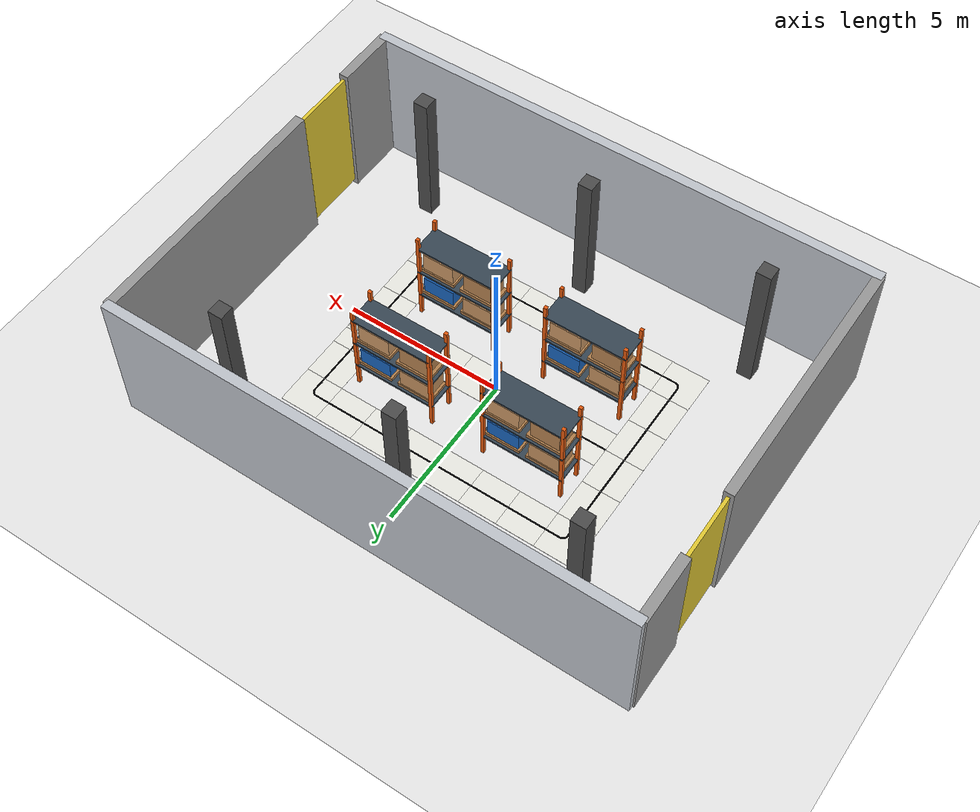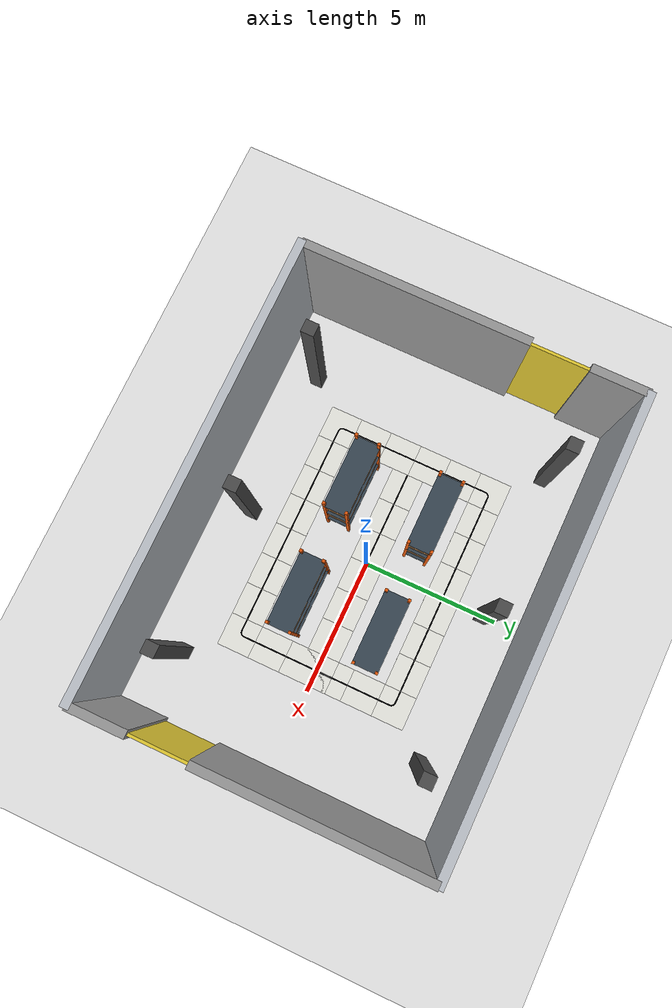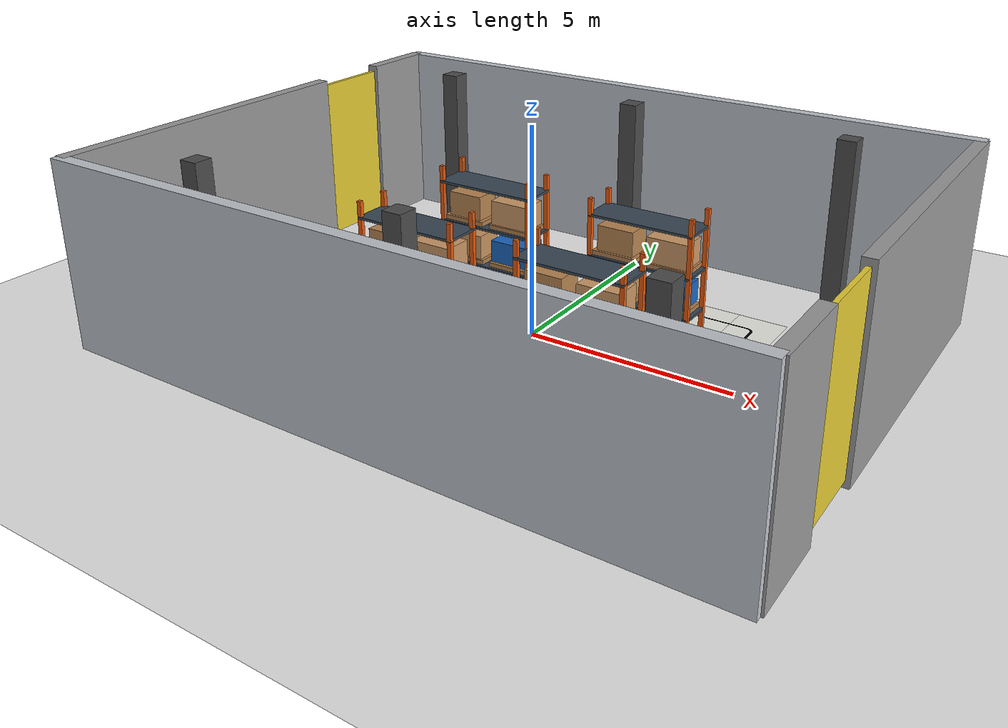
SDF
<sdf version='1.7'>
  <world name='default'>
    <!-- Iluminacao Industrial Zenital Suave (Sem Sombras Duras para Visao Computacional) -->
    <light name='sun_industrial' type='directional'>
      <cast_shadows>0</cast_shadows>
      <pose>0 0 25 0 0 0</pose>
      <diffuse>0.95 0.95 0.95 1</diffuse>
      <specular>0.08 0.08 0.08 1</specular>
      <attenuation>
        <range>1000</range>
        <constant>0.9</constant>
        <linear>0.01</linear>
        <quadratic>0.001</quadratic>
      </attenuation>
      <direction>0.05 0.05 -1</direction>
    </light>

    <!-- Luminarias Industriais Distribuidas (Luzes High-Bay) -->
    <light name='bay_light_1' type='point'>
      <cast_shadows>0</cast_shadows>
      <pose>-3.5 2.5 4.5 0 0 0</pose>
      <diffuse>0.88 0.90 0.95 1</diffuse>
      <specular>0.1 0.1 0.1 1</specular>
      <attenuation><range>25</range><constant>0.8</constant><linear>0.02</linear><quadratic>0.005</quadratic></attenuation>
    </light>

    <light name='bay_light_2' type='point'>
      <cast_shadows>0</cast_shadows>
      <pose>3.5 2.5 4.5 0 0 0</pose>
      <diffuse>0.88 0.90 0.95 1</diffuse>
      <specular>0.1 0.1 0.1 1</specular>
      <attenuation><range>25</range><constant>0.8</constant><linear>0.02</linear><quadratic>0.005</quadratic></attenuation>
    </light>

    <light name='bay_light_3' type='point'>
      <cast_shadows>0</cast_shadows>
      <pose>-3.5 -2.5 4.5 0 0 0</pose>
      <diffuse>0.88 0.90 0.95 1</diffuse>
      <specular>0.1 0.1 0.1 1</specular>
      <attenuation><range>25</range><constant>0.8</constant><linear>0.02</linear><quadratic>0.005</quadratic></attenuation>
    </light>

    <light name='bay_light_4' type='point'>
      <cast_shadows>0</cast_shadows>
      <pose>3.5 -2.5 4.5 0 0 0</pose>
      <diffuse>0.88 0.90 0.95 1</diffuse>
      <specular>0.1 0.1 0.1 1</specular>
      <attenuation><range>25</range><constant>0.8</constant><linear>0.02</linear><quadratic>0.005</quadratic></attenuation>
    </light>

    <light name='bay_light_center' type='point'>
      <cast_shadows>0</cast_shadows>
      <pose>0.0 0.0 5.0 0 0 0</pose>
      <diffuse>0.92 0.92 0.95 1</diffuse>
      <specular>0.1 0.1 0.1 1</specular>
      <attenuation><range>30</range><constant>0.8</constant><linear>0.015</linear><quadratic>0.003</quadratic></attenuation>
    </light>

    <!-- Ambiente Global do Armazem -->
    <scene>
      <ambient>0.92 0.92 0.94 1</ambient>
      <background>0.95 0.95 0.98 1</background>
      <shadows>0</shadows>
      <grid>0</grid>
    </scene>

    <!-- Piso Industrial de Concreto Polido Claro (Alto Atrito e Contraste com Linhas Pretas) -->
    <model name='ground_plane'>
      <static>1</static>
      <link name='link'>
        <collision name='collision'>
          <geometry>
            <plane>
              <normal>0 0 1</normal>
              <size>150 150</size>
            </plane>
          </geometry>
          <surface>
            <contact><collide_bitmask>65535</collide_bitmask><ode/></contact>
            <friction>
              <ode><mu>100</mu><mu2>50</mu2></ode>
              <torsional><ode/></torsional>
            </friction>
            <bounce/>
          </surface>
        </collision>
        <visual name='visual'>
          <cast_shadows>0</cast_shadows>
          <geometry>
            <plane>
              <normal>0 0 1</normal>
              <size>150 150</size>
            </plane>
          </geometry>
          <material>
            <script>
              <uri>file://media/materials/scripts/gazebo.material</uri>
              <name>Gazebo/White</name>
            </script>
            <ambient>0.98 0.98 0.98 1</ambient>
            <diffuse>0.98 0.98 0.98 1</diffuse>
            <specular>0.05 0.05 0.05 1</specular>
          </material>
        </visual>
      </link>
    </model>

    <!-- Parametros Fisicos ODE para Estabilidade Dinamica -->
    <gravity>0 0 -9.8</gravity>
    <magnetic_field>6e-06 2.3e-05 -4.2e-05</magnetic_field>
    <atmosphere type='adiabatic'/>
    <physics type='ode'>
      <max_step_size>0.001</max_step_size>
      <real_time_factor>1</real_time_factor>
      <real_time_update_rate>1000</real_time_update_rate>
    </physics>
    <audio><device>none</device></audio>

    <!-- Parede Perimetral Norte -->
    <model name='parede_norte'>
      <static>1</static>
      <pose>0.0 6.0 2.25 0 0 0</pose>
      <link name='link'>
        <collision name='col'><geometry><box><size>16.2 0.3 4.5</size></box></geometry></collision>
        <visual name='vis'>
          <geometry><box><size>16.2 0.3 4.5</size></box></geometry>
          <material>
            <script><uri>file://media/materials/scripts/gazebo.material</uri><name>Gazebo/Grey</name></script>
            <ambient>0.75 0.77 0.80 1</ambient><diffuse>0.75 0.77 0.80 1</diffuse>
          </material>
        </visual>
      </link>
    </model>
    <!-- Parede Perimetral Sul -->
    <model name='parede_sul'>
      <static>1</static>
      <pose>0.0 -6.0 2.25 0 0 0</pose>
      <link name='link'>
        <collision name='col'><geometry><box><size>16.2 0.3 4.5</size></box></geometry></collision>
        <visual name='vis'>
          <geometry><box><size>16.2 0.3 4.5</size></box></geometry>
          <material>
            <script><uri>file://media/materials/scripts/gazebo.material</uri><name>Gazebo/Grey</name></script>
            <ambient>0.75 0.77 0.80 1</ambient><diffuse>0.75 0.77 0.80 1</diffuse>
          </material>
        </visual>
      </link>
    </model>
    <!-- Parede Oeste com Doca de Entrada -->
    <model name='parede_oeste_1'>
      <static>1</static>
      <pose>-8.0 -2.0 2.25 0 0 0</pose>
      <link name='link'>
        <collision name='col'><geometry><box><size>0.3 8.0 4.5</size></box></geometry></collision>
        <visual name='vis'>
          <geometry><box><size>0.3 8.0 4.5</size></box></geometry>
          <material><script><uri>file://media/materials/scripts/gazebo.material</uri><name>Gazebo/Grey</name></script></material>
        </visual>
      </link>
    </model>
    <model name='parede_oeste_2'>
      <static>1</static>
      <pose>-8.0 5.0 2.25 0 0 0</pose>
      <link name='link'>
        <collision name='col'><geometry><box><size>0.3 2.0 4.5</size></box></geometry></collision>
        <visual name='vis'>
          <geometry><box><size>0.3 2.0 4.5</size></box></geometry>
          <material><script><uri>file://media/materials/scripts/gazebo.material</uri><name>Gazebo/Grey</name></script></material>
        </visual>
      </link>
    </model>
    <!-- Portao da Doca de Entrada (Inbound Bay) -->
    <model name='portao_doca_entrada'>
      <static>1</static>
      <pose>-8.0 3.0 2.25 0 0 0</pose>
      <link name='link'>
        <visual name='vis'>
          <geometry><box><size>0.1 2.8 4.2</size></box></geometry>
          <material>
            <script><uri>file://media/materials/scripts/gazebo.material</uri><name>Gazebo/ZincYellow</name></script>
            <ambient>0.90 0.80 0.2 1</ambient><diffuse>0.90 0.80 0.2 1</diffuse>
          </material>
        </visual>
      </link>
    </model>
    <!-- Parede Leste com Doca de Expedicao -->
    <model name='parede_leste_1'>
      <static>1</static>
      <pose>8.0 2.0 2.25 0 0 0</pose>
      <link name='link'>
        <collision name='col'><geometry><box><size>0.3 8.0 4.5</size></box></geometry></collision>
        <visual name='vis'>
          <geometry><box><size>0.3 8.0 4.5</size></box></geometry>
          <material><script><uri>file://media/materials/scripts/gazebo.material</uri><name>Gazebo/Grey</name></script></material>
        </visual>
      </link>
    </model>
    <model name='parede_leste_2'>
      <static>1</static>
      <pose>8.0 -5.0 2.25 0 0 0</pose>
      <link name='link'>
        <collision name='col'><geometry><box><size>0.3 2.0 4.5</size></box></geometry></collision>
        <visual name='vis'>
          <geometry><box><size>0.3 2.0 4.5</size></box></geometry>
          <material><script><uri>file://media/materials/scripts/gazebo.material</uri><name>Gazebo/Grey</name></script></material>
        </visual>
      </link>
    </model>
    <!-- Portao da Doca de Expedicao (Outbound Bay) -->
    <model name='portao_doca_expedicao'>
      <static>1</static>
      <pose>8.0 -3.0 2.25 0 0 0</pose>
      <link name='link'>
        <visual name='vis'>
          <geometry><box><size>0.1 2.8 4.2</size></box></geometry>
          <material>
            <script><uri>file://media/materials/scripts/gazebo.material</uri><name>Gazebo/ZincYellow</name></script>
            <ambient>0.90 0.80 0.2 1</ambient><diffuse>0.90 0.80 0.2 1</diffuse>
          </material>
        </visual>
      </link>
    </model>
    <model name='coluna_industrial_1'>
      <static>1</static>
      <pose>-5.50 4.50 2.25 0 0 0</pose>
      <link name='link'>
        <collision name='col'><geometry><box><size>0.45 0.45 4.5</size></box></geometry></collision>
        <visual name='vis'>
          <geometry><box><size>0.45 0.45 4.5</size></box></geometry>
          <material>
            <script><uri>file://media/materials/scripts/gazebo.material</uri><name>Gazebo/DarkGrey</name></script>
            <ambient>0.25 0.28 0.32 1</ambient><diffuse>0.30 0.33 0.37 1</diffuse>
          </material>
        </visual>
      </link>
    </model>
    <model name='coluna_industrial_2'>
      <static>1</static>
      <pose>0.00 4.50 2.25 0 0 0</pose>
      <link name='link'>
        <collision name='col'><geometry><box><size>0.45 0.45 4.5</size></box></geometry></collision>
        <visual name='vis'>
          <geometry><box><size>0.45 0.45 4.5</size></box></geometry>
          <material>
            <script><uri>file://media/materials/scripts/gazebo.material</uri><name>Gazebo/DarkGrey</name></script>
            <ambient>0.25 0.28 0.32 1</ambient><diffuse>0.30 0.33 0.37 1</diffuse>
          </material>
        </visual>
      </link>
    </model>
    <model name='coluna_industrial_3'>
      <static>1</static>
      <pose>5.50 4.50 2.25 0 0 0</pose>
      <link name='link'>
        <collision name='col'><geometry><box><size>0.45 0.45 4.5</size></box></geometry></collision>
        <visual name='vis'>
          <geometry><box><size>0.45 0.45 4.5</size></box></geometry>
          <material>
            <script><uri>file://media/materials/scripts/gazebo.material</uri><name>Gazebo/DarkGrey</name></script>
            <ambient>0.25 0.28 0.32 1</ambient><diffuse>0.30 0.33 0.37 1</diffuse>
          </material>
        </visual>
      </link>
    </model>
    <model name='coluna_industrial_4'>
      <static>1</static>
      <pose>-5.50 -4.50 2.25 0 0 0</pose>
      <link name='link'>
        <collision name='col'><geometry><box><size>0.45 0.45 4.5</size></box></geometry></collision>
        <visual name='vis'>
          <geometry><box><size>0.45 0.45 4.5</size></box></geometry>
          <material>
            <script><uri>file://media/materials/scripts/gazebo.material</uri><name>Gazebo/DarkGrey</name></script>
            <ambient>0.25 0.28 0.32 1</ambient><diffuse>0.30 0.33 0.37 1</diffuse>
          </material>
        </visual>
      </link>
    </model>
    <model name='coluna_industrial_5'>
      <static>1</static>
      <pose>0.00 -4.50 2.25 0 0 0</pose>
      <link name='link'>
        <collision name='col'><geometry><box><size>0.45 0.45 4.5</size></box></geometry></collision>
        <visual name='vis'>
          <geometry><box><size>0.45 0.45 4.5</size></box></geometry>
          <material>
            <script><uri>file://media/materials/scripts/gazebo.material</uri><name>Gazebo/DarkGrey</name></script>
            <ambient>0.25 0.28 0.32 1</ambient><diffuse>0.30 0.33 0.37 1</diffuse>
          </material>
        </visual>
      </link>
    </model>
    <model name='coluna_industrial_6'>
      <static>1</static>
      <pose>5.50 -4.50 2.25 0 0 0</pose>
      <link name='link'>
        <collision name='col'><geometry><box><size>0.45 0.45 4.5</size></box></geometry></collision>
        <visual name='vis'>
          <geometry><box><size>0.45 0.45 4.5</size></box></geometry>
          <material>
            <script><uri>file://media/materials/scripts/gazebo.material</uri><name>Gazebo/DarkGrey</name></script>
            <ambient>0.25 0.28 0.32 1</ambient><diffuse>0.30 0.33 0.37 1</diffuse>
          </material>
        </visual>
      </link>
    </model>

    <!-- Gondola Industrial Porta-Paletes: gondola_setor_a_norte -->
    <model name='gondola_setor_a_norte'>
      <static>1</static>
      <pose>-2.1000 1.5000 0.0 0 0 0.000000</pose>
      <link name='link'>
        <!-- Colisao da Base Estrutural para Evitar Colisoes do Robo -->
        <collision name='col_base'>
          <pose>0 0 1.60 0 0 0</pose>
          <geometry><box><size>2.60 0.90 3.20</size></box></geometry>
        </collision>

        <!-- Pilares Verticais Metalicos (Laranja Industrial) -->
        <visual name='pilar_fl'>
          <pose>-1.25 0.40 1.60 0 0 0</pose>
          <geometry><box><size>0.10 0.10 3.20</size></box></geometry>
          <material><ambient>0.90 0.35 0.05 1</ambient><diffuse>0.90 0.35 0.05 1</diffuse></material>
        </visual>
        <visual name='pilar_fr'>
          <pose>1.25 0.40 1.60 0 0 0</pose>
          <geometry><box><size>0.10 0.10 3.20</size></box></geometry>
          <material><ambient>0.90 0.35 0.05 1</ambient><diffuse>0.90 0.35 0.05 1</diffuse></material>
        </visual>
        <visual name='pilar_bl'>
          <pose>-1.25 -0.40 1.60 0 0 0</pose>
          <geometry><box><size>0.10 0.10 3.20</size></box></geometry>
          <material><ambient>0.90 0.35 0.05 1</ambient><diffuse>0.90 0.35 0.05 1</diffuse></material>
        </visual>
        <visual name='pilar_br'>
          <pose>1.25 -0.40 1.60 0 0 0</pose>
          <geometry><box><size>0.10 0.10 3.20</size></box></geometry>
          <material><ambient>0.90 0.35 0.05 1</ambient><diffuse>0.90 0.35 0.05 1</diffuse></material>
        </visual>

        <!-- Vigas Horizontais das Prateleiras (Nivel 1: 0.8m, Nivel 2: 1.8m, Nivel 3: 2.8m) -->
        <visual name='prateleira_1'>
          <pose>0 0 0.80 0 0 0</pose>
          <geometry><box><size>2.60 0.90 0.06</size></box></geometry>
          <material><ambient>0.22 0.28 0.33 1</ambient><diffuse>0.22 0.28 0.33 1</diffuse></material>
        </visual>
        <visual name='prateleira_2'>
          <pose>0 0 1.80 0 0 0</pose>
          <geometry><box><size>2.60 0.90 0.06</size></box></geometry>
          <material><ambient>0.22 0.28 0.33 1</ambient><diffuse>0.22 0.28 0.33 1</diffuse></material>
        </visual>
        <visual name='prateleira_3'>
          <pose>0 0 2.80 0 0 0</pose>
          <geometry><box><size>2.60 0.90 0.06</size></box></geometry>
          <material><ambient>0.22 0.28 0.33 1</ambient><diffuse>0.22 0.28 0.33 1</diffuse></material>
        </visual>

        <!-- Cargas: Pallets de Madeira e Caixas de Papelao no Nivel 1 -->
        <visual name='pallet_l1_a'>
          <pose>-0.65 0 0.88 0 0 0</pose>
          <geometry><box><size>1.10 0.75 0.12</size></box></geometry>
          <material><script><uri>file://media/materials/scripts/gazebo.material</uri><name>Gazebo/WoodPallet</name></script></material>
        </visual>
        <visual name='caixa_l1_a'>
          <pose>-0.65 0 1.25 0 0 0</pose>
          <geometry><box><size>0.95 0.70 0.60</size></box></geometry>
          <material><ambient>0.78 0.58 0.38 1</ambient><diffuse>0.78 0.58 0.38 1</diffuse></material>
        </visual>

        <visual name='pallet_l1_b'>
          <pose>0.65 0 0.88 0 0 0</pose>
          <geometry><box><size>1.10 0.75 0.12</size></box></geometry>
          <material><script><uri>file://media/materials/scripts/gazebo.material</uri><name>Gazebo/WoodPallet</name></script></material>
        </visual>
        <visual name='container_l1_b'>
          <pose>0.65 0 1.25 0 0 0</pose>
          <geometry><box><size>1.00 0.70 0.55</size></box></geometry>
          <material><ambient>0.10 0.40 0.75 1</ambient><diffuse>0.10 0.40 0.75 1</diffuse></material>
        </visual>

        <!-- Cargas no Nivel 2 -->
        <visual name='pallet_l2_a'>
          <pose>-0.65 0 1.88 0 0 0</pose>
          <geometry><box><size>1.10 0.75 0.12</size></box></geometry>
          <material><script><uri>file://media/materials/scripts/gazebo.material</uri><name>Gazebo/WoodPallet</name></script></material>
        </visual>
        <visual name='caixa_l2_a'>
          <pose>-0.65 0 2.25 0 0 0</pose>
          <geometry><box><size>0.90 0.65 0.60</size></box></geometry>
          <material><ambient>0.72 0.52 0.32 1</ambient><diffuse>0.72 0.52 0.32 1</diffuse></material>
        </visual>

        <visual name='pallet_l2_b'>
          <pose>0.65 0 1.88 0 0 0</pose>
          <geometry><box><size>1.10 0.75 0.12</size></box></geometry>
          <material><script><uri>file://media/materials/scripts/gazebo.material</uri><name>Gazebo/WoodPallet</name></script></material>
        </visual>
        <visual name='caixa_l2_b'>
          <pose>0.65 0 2.25 0 0 0</pose>
          <geometry><box><size>1.00 0.68 0.60</size></box></geometry>
          <material><ambient>0.80 0.60 0.40 1</ambient><diffuse>0.80 0.60 0.40 1</diffuse></material>
        </visual>
      </link>
    </model>

    <!-- Gondola Industrial Porta-Paletes: gondola_setor_a_sul -->
    <model name='gondola_setor_a_sul'>
      <static>1</static>
      <pose>-2.1000 -1.5000 0.0 0 0 0.000000</pose>
      <link name='link'>
        <!-- Colisao da Base Estrutural para Evitar Colisoes do Robo -->
        <collision name='col_base'>
          <pose>0 0 1.60 0 0 0</pose>
          <geometry><box><size>2.60 0.90 3.20</size></box></geometry>
        </collision>

        <!-- Pilares Verticais Metalicos (Laranja Industrial) -->
        <visual name='pilar_fl'>
          <pose>-1.25 0.40 1.60 0 0 0</pose>
          <geometry><box><size>0.10 0.10 3.20</size></box></geometry>
          <material><ambient>0.90 0.35 0.05 1</ambient><diffuse>0.90 0.35 0.05 1</diffuse></material>
        </visual>
        <visual name='pilar_fr'>
          <pose>1.25 0.40 1.60 0 0 0</pose>
          <geometry><box><size>0.10 0.10 3.20</size></box></geometry>
          <material><ambient>0.90 0.35 0.05 1</ambient><diffuse>0.90 0.35 0.05 1</diffuse></material>
        </visual>
        <visual name='pilar_bl'>
          <pose>-1.25 -0.40 1.60 0 0 0</pose>
          <geometry><box><size>0.10 0.10 3.20</size></box></geometry>
          <material><ambient>0.90 0.35 0.05 1</ambient><diffuse>0.90 0.35 0.05 1</diffuse></material>
        </visual>
        <visual name='pilar_br'>
          <pose>1.25 -0.40 1.60 0 0 0</pose>
          <geometry><box><size>0.10 0.10 3.20</size></box></geometry>
          <material><ambient>0.90 0.35 0.05 1</ambient><diffuse>0.90 0.35 0.05 1</diffuse></material>
        </visual>

        <!-- Vigas Horizontais das Prateleiras (Nivel 1: 0.8m, Nivel 2: 1.8m, Nivel 3: 2.8m) -->
        <visual name='prateleira_1'>
          <pose>0 0 0.80 0 0 0</pose>
          <geometry><box><size>2.60 0.90 0.06</size></box></geometry>
          <material><ambient>0.22 0.28 0.33 1</ambient><diffuse>0.22 0.28 0.33 1</diffuse></material>
        </visual>
        <visual name='prateleira_2'>
          <pose>0 0 1.80 0 0 0</pose>
          <geometry><box><size>2.60 0.90 0.06</size></box></geometry>
          <material><ambient>0.22 0.28 0.33 1</ambient><diffuse>0.22 0.28 0.33 1</diffuse></material>
        </visual>
        <visual name='prateleira_3'>
          <pose>0 0 2.80 0 0 0</pose>
          <geometry><box><size>2.60 0.90 0.06</size></box></geometry>
          <material><ambient>0.22 0.28 0.33 1</ambient><diffuse>0.22 0.28 0.33 1</diffuse></material>
        </visual>

        <!-- Cargas: Pallets de Madeira e Caixas de Papelao no Nivel 1 -->
        <visual name='pallet_l1_a'>
          <pose>-0.65 0 0.88 0 0 0</pose>
          <geometry><box><size>1.10 0.75 0.12</size></box></geometry>
          <material><script><uri>file://media/materials/scripts/gazebo.material</uri><name>Gazebo/WoodPallet</name></script></material>
        </visual>
        <visual name='caixa_l1_a'>
          <pose>-0.65 0 1.25 0 0 0</pose>
          <geometry><box><size>0.95 0.70 0.60</size></box></geometry>
          <material><ambient>0.78 0.58 0.38 1</ambient><diffuse>0.78 0.58 0.38 1</diffuse></material>
        </visual>

        <visual name='pallet_l1_b'>
          <pose>0.65 0 0.88 0 0 0</pose>
          <geometry><box><size>1.10 0.75 0.12</size></box></geometry>
          <material><script><uri>file://media/materials/scripts/gazebo.material</uri><name>Gazebo/WoodPallet</name></script></material>
        </visual>
        <visual name='container_l1_b'>
          <pose>0.65 0 1.25 0 0 0</pose>
          <geometry><box><size>1.00 0.70 0.55</size></box></geometry>
          <material><ambient>0.10 0.40 0.75 1</ambient><diffuse>0.10 0.40 0.75 1</diffuse></material>
        </visual>

        <!-- Cargas no Nivel 2 -->
        <visual name='pallet_l2_a'>
          <pose>-0.65 0 1.88 0 0 0</pose>
          <geometry><box><size>1.10 0.75 0.12</size></box></geometry>
          <material><script><uri>file://media/materials/scripts/gazebo.material</uri><name>Gazebo/WoodPallet</name></script></material>
        </visual>
        <visual name='caixa_l2_a'>
          <pose>-0.65 0 2.25 0 0 0</pose>
          <geometry><box><size>0.90 0.65 0.60</size></box></geometry>
          <material><ambient>0.72 0.52 0.32 1</ambient><diffuse>0.72 0.52 0.32 1</diffuse></material>
        </visual>

        <visual name='pallet_l2_b'>
          <pose>0.65 0 1.88 0 0 0</pose>
          <geometry><box><size>1.10 0.75 0.12</size></box></geometry>
          <material><script><uri>file://media/materials/scripts/gazebo.material</uri><name>Gazebo/WoodPallet</name></script></material>
        </visual>
        <visual name='caixa_l2_b'>
          <pose>0.65 0 2.25 0 0 0</pose>
          <geometry><box><size>1.00 0.68 0.60</size></box></geometry>
          <material><ambient>0.80 0.60 0.40 1</ambient><diffuse>0.80 0.60 0.40 1</diffuse></material>
        </visual>
      </link>
    </model>

    <!-- Gondola Industrial Porta-Paletes: gondola_setor_b_norte -->
    <model name='gondola_setor_b_norte'>
      <static>1</static>
      <pose>2.1000 1.5000 0.0 0 0 0.000000</pose>
      <link name='link'>
        <!-- Colisao da Base Estrutural para Evitar Colisoes do Robo -->
        <collision name='col_base'>
          <pose>0 0 1.60 0 0 0</pose>
          <geometry><box><size>2.60 0.90 3.20</size></box></geometry>
        </collision>

        <!-- Pilares Verticais Metalicos (Laranja Industrial) -->
        <visual name='pilar_fl'>
          <pose>-1.25 0.40 1.60 0 0 0</pose>
          <geometry><box><size>0.10 0.10 3.20</size></box></geometry>
          <material><ambient>0.90 0.35 0.05 1</ambient><diffuse>0.90 0.35 0.05 1</diffuse></material>
        </visual>
        <visual name='pilar_fr'>
          <pose>1.25 0.40 1.60 0 0 0</pose>
          <geometry><box><size>0.10 0.10 3.20</size></box></geometry>
          <material><ambient>0.90 0.35 0.05 1</ambient><diffuse>0.90 0.35 0.05 1</diffuse></material>
        </visual>
        <visual name='pilar_bl'>
          <pose>-1.25 -0.40 1.60 0 0 0</pose>
          <geometry><box><size>0.10 0.10 3.20</size></box></geometry>
          <material><ambient>0.90 0.35 0.05 1</ambient><diffuse>0.90 0.35 0.05 1</diffuse></material>
        </visual>
        <visual name='pilar_br'>
          <pose>1.25 -0.40 1.60 0 0 0</pose>
          <geometry><box><size>0.10 0.10 3.20</size></box></geometry>
          <material><ambient>0.90 0.35 0.05 1</ambient><diffuse>0.90 0.35 0.05 1</diffuse></material>
        </visual>

        <!-- Vigas Horizontais das Prateleiras (Nivel 1: 0.8m, Nivel 2: 1.8m, Nivel 3: 2.8m) -->
        <visual name='prateleira_1'>
          <pose>0 0 0.80 0 0 0</pose>
          <geometry><box><size>2.60 0.90 0.06</size></box></geometry>
          <material><ambient>0.22 0.28 0.33 1</ambient><diffuse>0.22 0.28 0.33 1</diffuse></material>
        </visual>
        <visual name='prateleira_2'>
          <pose>0 0 1.80 0 0 0</pose>
          <geometry><box><size>2.60 0.90 0.06</size></box></geometry>
          <material><ambient>0.22 0.28 0.33 1</ambient><diffuse>0.22 0.28 0.33 1</diffuse></material>
        </visual>
        <visual name='prateleira_3'>
          <pose>0 0 2.80 0 0 0</pose>
          <geometry><box><size>2.60 0.90 0.06</size></box></geometry>
          <material><ambient>0.22 0.28 0.33 1</ambient><diffuse>0.22 0.28 0.33 1</diffuse></material>
        </visual>

        <!-- Cargas: Pallets de Madeira e Caixas de Papelao no Nivel 1 -->
        <visual name='pallet_l1_a'>
          <pose>-0.65 0 0.88 0 0 0</pose>
          <geometry><box><size>1.10 0.75 0.12</size></box></geometry>
          <material><script><uri>file://media/materials/scripts/gazebo.material</uri><name>Gazebo/WoodPallet</name></script></material>
        </visual>
        <visual name='caixa_l1_a'>
          <pose>-0.65 0 1.25 0 0 0</pose>
          <geometry><box><size>0.95 0.70 0.60</size></box></geometry>
          <material><ambient>0.78 0.58 0.38 1</ambient><diffuse>0.78 0.58 0.38 1</diffuse></material>
        </visual>

        <visual name='pallet_l1_b'>
          <pose>0.65 0 0.88 0 0 0</pose>
          <geometry><box><size>1.10 0.75 0.12</size></box></geometry>
          <material><script><uri>file://media/materials/scripts/gazebo.material</uri><name>Gazebo/WoodPallet</name></script></material>
        </visual>
        <visual name='container_l1_b'>
          <pose>0.65 0 1.25 0 0 0</pose>
          <geometry><box><size>1.00 0.70 0.55</size></box></geometry>
          <material><ambient>0.10 0.40 0.75 1</ambient><diffuse>0.10 0.40 0.75 1</diffuse></material>
        </visual>

        <!-- Cargas no Nivel 2 -->
        <visual name='pallet_l2_a'>
          <pose>-0.65 0 1.88 0 0 0</pose>
          <geometry><box><size>1.10 0.75 0.12</size></box></geometry>
          <material><script><uri>file://media/materials/scripts/gazebo.material</uri><name>Gazebo/WoodPallet</name></script></material>
        </visual>
        <visual name='caixa_l2_a'>
          <pose>-0.65 0 2.25 0 0 0</pose>
          <geometry><box><size>0.90 0.65 0.60</size></box></geometry>
          <material><ambient>0.72 0.52 0.32 1</ambient><diffuse>0.72 0.52 0.32 1</diffuse></material>
        </visual>

        <visual name='pallet_l2_b'>
          <pose>0.65 0 1.88 0 0 0</pose>
          <geometry><box><size>1.10 0.75 0.12</size></box></geometry>
          <material><script><uri>file://media/materials/scripts/gazebo.material</uri><name>Gazebo/WoodPallet</name></script></material>
        </visual>
        <visual name='caixa_l2_b'>
          <pose>0.65 0 2.25 0 0 0</pose>
          <geometry><box><size>1.00 0.68 0.60</size></box></geometry>
          <material><ambient>0.80 0.60 0.40 1</ambient><diffuse>0.80 0.60 0.40 1</diffuse></material>
        </visual>
      </link>
    </model>

    <!-- Gondola Industrial Porta-Paletes: gondola_setor_b_sul -->
    <model name='gondola_setor_b_sul'>
      <static>1</static>
      <pose>2.1000 -1.5000 0.0 0 0 0.000000</pose>
      <link name='link'>
        <!-- Colisao da Base Estrutural para Evitar Colisoes do Robo -->
        <collision name='col_base'>
          <pose>0 0 1.60 0 0 0</pose>
          <geometry><box><size>2.60 0.90 3.20</size></box></geometry>
        </collision>

        <!-- Pilares Verticais Metalicos (Laranja Industrial) -->
        <visual name='pilar_fl'>
          <pose>-1.25 0.40 1.60 0 0 0</pose>
          <geometry><box><size>0.10 0.10 3.20</size></box></geometry>
          <material><ambient>0.90 0.35 0.05 1</ambient><diffuse>0.90 0.35 0.05 1</diffuse></material>
        </visual>
        <visual name='pilar_fr'>
          <pose>1.25 0.40 1.60 0 0 0</pose>
          <geometry><box><size>0.10 0.10 3.20</size></box></geometry>
          <material><ambient>0.90 0.35 0.05 1</ambient><diffuse>0.90 0.35 0.05 1</diffuse></material>
        </visual>
        <visual name='pilar_bl'>
          <pose>-1.25 -0.40 1.60 0 0 0</pose>
          <geometry><box><size>0.10 0.10 3.20</size></box></geometry>
          <material><ambient>0.90 0.35 0.05 1</ambient><diffuse>0.90 0.35 0.05 1</diffuse></material>
        </visual>
        <visual name='pilar_br'>
          <pose>1.25 -0.40 1.60 0 0 0</pose>
          <geometry><box><size>0.10 0.10 3.20</size></box></geometry>
          <material><ambient>0.90 0.35 0.05 1</ambient><diffuse>0.90 0.35 0.05 1</diffuse></material>
        </visual>

        <!-- Vigas Horizontais das Prateleiras (Nivel 1: 0.8m, Nivel 2: 1.8m, Nivel 3: 2.8m) -->
        <visual name='prateleira_1'>
          <pose>0 0 0.80 0 0 0</pose>
          <geometry><box><size>2.60 0.90 0.06</size></box></geometry>
          <material><ambient>0.22 0.28 0.33 1</ambient><diffuse>0.22 0.28 0.33 1</diffuse></material>
        </visual>
        <visual name='prateleira_2'>
          <pose>0 0 1.80 0 0 0</pose>
          <geometry><box><size>2.60 0.90 0.06</size></box></geometry>
          <material><ambient>0.22 0.28 0.33 1</ambient><diffuse>0.22 0.28 0.33 1</diffuse></material>
        </visual>
        <visual name='prateleira_3'>
          <pose>0 0 2.80 0 0 0</pose>
          <geometry><box><size>2.60 0.90 0.06</size></box></geometry>
          <material><ambient>0.22 0.28 0.33 1</ambient><diffuse>0.22 0.28 0.33 1</diffuse></material>
        </visual>

        <!-- Cargas: Pallets de Madeira e Caixas de Papelao no Nivel 1 -->
        <visual name='pallet_l1_a'>
          <pose>-0.65 0 0.88 0 0 0</pose>
          <geometry><box><size>1.10 0.75 0.12</size></box></geometry>
          <material><script><uri>file://media/materials/scripts/gazebo.material</uri><name>Gazebo/WoodPallet</name></script></material>
        </visual>
        <visual name='caixa_l1_a'>
          <pose>-0.65 0 1.25 0 0 0</pose>
          <geometry><box><size>0.95 0.70 0.60</size></box></geometry>
          <material><ambient>0.78 0.58 0.38 1</ambient><diffuse>0.78 0.58 0.38 1</diffuse></material>
        </visual>

        <visual name='pallet_l1_b'>
          <pose>0.65 0 0.88 0 0 0</pose>
          <geometry><box><size>1.10 0.75 0.12</size></box></geometry>
          <material><script><uri>file://media/materials/scripts/gazebo.material</uri><name>Gazebo/WoodPallet</name></script></material>
        </visual>
        <visual name='container_l1_b'>
          <pose>0.65 0 1.25 0 0 0</pose>
          <geometry><box><size>1.00 0.70 0.55</size></box></geometry>
          <material><ambient>0.10 0.40 0.75 1</ambient><diffuse>0.10 0.40 0.75 1</diffuse></material>
        </visual>

        <!-- Cargas no Nivel 2 -->
        <visual name='pallet_l2_a'>
          <pose>-0.65 0 1.88 0 0 0</pose>
          <geometry><box><size>1.10 0.75 0.12</size></box></geometry>
          <material><script><uri>file://media/materials/scripts/gazebo.material</uri><name>Gazebo/WoodPallet</name></script></material>
        </visual>
        <visual name='caixa_l2_a'>
          <pose>-0.65 0 2.25 0 0 0</pose>
          <geometry><box><size>0.90 0.65 0.60</size></box></geometry>
          <material><ambient>0.72 0.52 0.32 1</ambient><diffuse>0.72 0.52 0.32 1</diffuse></material>
        </visual>

        <visual name='pallet_l2_b'>
          <pose>0.65 0 1.88 0 0 0</pose>
          <geometry><box><size>1.10 0.75 0.12</size></box></geometry>
          <material><script><uri>file://media/materials/scripts/gazebo.material</uri><name>Gazebo/WoodPallet</name></script></material>
        </visual>
        <visual name='caixa_l2_b'>
          <pose>0.65 0 2.25 0 0 0</pose>
          <geometry><box><size>1.00 0.68 0.60</size></box></geometry>
          <material><ambient>0.80 0.60 0.40 1</ambient><diffuse>0.80 0.60 0.40 1</diffuse></material>
        </visual>
      </link>
    </model>

    <!-- Estacao 1: Doca de Entrada / Abastecimento (Spawn Inicial) -->
    <model name='marker_estacao_1_verde'>
      <static>1</static>
      <pose>-2.4000 3.0000 0.002 0 0 0.000000</pose>
      <link name='link'>
        <visual name='visual_marker'>
          <cast_shadows>0</cast_shadows>
          <geometry><box><size>0.80 0.40 0.002</size></box></geometry>
          <material>
            <script>
              <uri>file://media/materials/scripts/gazebo.material</uri>
              <name>Gazebo/Green</name>
            </script>
            <ambient>0.00 0.90 0.30 1</ambient>
            <diffuse>0.00 0.90 0.30 1</diffuse>
            <emissive>0.00 0.23 0.07 1</emissive>
          </material>
        </visual>
      </link>
    </model>

    <!-- Estacao 2: Corredor de Estoque A (Picking A) -->
    <model name='marker_estacao_2_azul'>
      <static>1</static>
      <pose>4.2000 1.2000 0.002 0 0 -1.570796</pose>
      <link name='link'>
        <visual name='visual_marker'>
          <cast_shadows>0</cast_shadows>
          <geometry><box><size>0.80 0.40 0.002</size></box></geometry>
          <material>
            <script>
              <uri>file://media/materials/scripts/gazebo.material</uri>
              <name>Gazebo/Blue</name>
            </script>
            <ambient>0.15 0.45 1.00 1</ambient>
            <diffuse>0.15 0.45 1.00 1</diffuse>
            <emissive>0.04 0.11 0.25 1</emissive>
          </material>
        </visual>
      </link>
    </model>

    <!-- Estacao 3: Intersecao Central / Bypass -->
    <model name='marker_estacao_3_ciano'>
      <static>1</static>
      <pose>0.0000 0.0000 0.002 0 0 0.000000</pose>
      <link name='link'>
        <visual name='visual_marker'>
          <cast_shadows>0</cast_shadows>
          <geometry><box><size>0.80 0.40 0.002</size></box></geometry>
          <material>
            <script>
              <uri>file://media/materials/scripts/gazebo.material</uri>
              <name>Gazebo/Turquoise</name>
            </script>
            <ambient>0.00 0.85 0.95 1</ambient>
            <diffuse>0.00 0.85 0.95 1</diffuse>
            <emissive>0.00 0.21 0.24 1</emissive>
          </material>
        </visual>
      </link>
    </model>

    <!-- Estacao 4: Corredor de Estoque B (Picking B) -->
    <model name='marker_estacao_4_amarelo'>
      <static>1</static>
      <pose>0.0000 -3.0000 0.002 0 0 3.141593</pose>
      <link name='link'>
        <visual name='visual_marker'>
          <cast_shadows>0</cast_shadows>
          <geometry><box><size>0.80 0.40 0.002</size></box></geometry>
          <material>
            <script>
              <uri>file://media/materials/scripts/gazebo.material</uri>
              <name>Gazebo/Yellow</name>
            </script>
            <ambient>1.00 0.90 0.00 1</ambient>
            <diffuse>1.00 0.90 0.00 1</diffuse>
            <emissive>0.25 0.23 0.00 1</emissive>
          </material>
        </visual>
      </link>
    </model>

    <!-- Estacao 5: Doca de Expedicao / Descarga Final -->
    <model name='marker_estacao_5_vermelho'>
      <static>1</static>
      <pose>-4.2000 -0.6000 0.002 0 0 1.570796</pose>
      <link name='link'>
        <visual name='visual_marker'>
          <cast_shadows>0</cast_shadows>
          <geometry><box><size>0.80 0.40 0.002</size></box></geometry>
          <material>
            <script>
              <uri>file://media/materials/scripts/gazebo.material</uri>
              <name>Gazebo/Red</name>
            </script>
            <ambient>1.00 0.10 0.15 1</ambient>
            <diffuse>1.00 0.10 0.15 1</diffuse>
            <emissive>0.25 0.03 0.04 1</emissive>
          </material>
        </visual>
      </link>
    </model>

    <model name='tile_norte_1'>
      <static>1</static>
      <link name='link'>
        <visual name='visual'>
          <pose>0 0 0 1.5708 -0 0</pose>
          <geometry>
            <mesh>
              <uri>/workspace/tiles/tile-reta/meshes/tile_reta.dae</uri>
              <scale>4.0 1 4.0</scale>
            </mesh>
          </geometry>
        </visual>
        <collision name='collision'>
          <geometry>
            <box>
              <size>1.20 1.20 0.003</size>
            </box>
          </geometry>
          <surface>
            <contact><ode/></contact>
            <friction>
              <ode><mu>100</mu><mu2>50</mu2></ode>
              <torsional><ode/></torsional>
            </friction>
          </surface>
        </collision>
      </link>
      <pose>-3.6000 3.6000 0.0010 0.0000 0.0000 0.000000</pose>
    </model>

    <model name='tile_norte_2'>
      <static>1</static>
      <link name='link'>
        <visual name='visual'>
          <pose>0 0 0 1.5708 -0 0</pose>
          <geometry>
            <mesh>
              <uri>/workspace/tiles/tile-reta/meshes/tile_reta.dae</uri>
              <scale>4.0 1 4.0</scale>
            </mesh>
          </geometry>
        </visual>
        <collision name='collision'>
          <geometry>
            <box>
              <size>1.20 1.20 0.003</size>
            </box>
          </geometry>
          <surface>
            <contact><ode/></contact>
            <friction>
              <ode><mu>100</mu><mu2>50</mu2></ode>
              <torsional><ode/></torsional>
            </friction>
          </surface>
        </collision>
      </link>
      <pose>-2.4000 3.6000 0.0010 0.0000 0.0000 0.000000</pose>
    </model>

    <model name='tile_norte_3'>
      <static>1</static>
      <link name='link'>
        <visual name='visual'>
          <pose>0 0 0 1.5708 -0 0</pose>
          <geometry>
            <mesh>
              <uri>/workspace/tiles/tile-reta/meshes/tile_reta.dae</uri>
              <scale>4.0 1 4.0</scale>
            </mesh>
          </geometry>
        </visual>
        <collision name='collision'>
          <geometry>
            <box>
              <size>1.20 1.20 0.003</size>
            </box>
          </geometry>
          <surface>
            <contact><ode/></contact>
            <friction>
              <ode><mu>100</mu><mu2>50</mu2></ode>
              <torsional><ode/></torsional>
            </friction>
          </surface>
        </collision>
      </link>
      <pose>-1.2000 3.6000 0.0010 0.0000 0.0000 0.000000</pose>
    </model>

    <model name='tile_norte_4'>
      <static>1</static>
      <link name='link'>
        <visual name='visual'>
          <pose>0 0 0 1.5708 -0 0</pose>
          <geometry>
            <mesh>
              <uri>/workspace/tiles/tile-reta/meshes/tile_reta.dae</uri>
              <scale>4.0 1 4.0</scale>
            </mesh>
          </geometry>
        </visual>
        <collision name='collision'>
          <geometry>
            <box>
              <size>1.20 1.20 0.003</size>
            </box>
          </geometry>
          <surface>
            <contact><ode/></contact>
            <friction>
              <ode><mu>100</mu><mu2>50</mu2></ode>
              <torsional><ode/></torsional>
            </friction>
          </surface>
        </collision>
      </link>
      <pose>0.0000 3.6000 0.0010 0.0000 0.0000 0.000000</pose>
    </model>

    <model name='tile_norte_5'>
      <static>1</static>
      <link name='link'>
        <visual name='visual'>
          <pose>0 0 0 1.5708 -0 0</pose>
          <geometry>
            <mesh>
              <uri>/workspace/tiles/tile-reta/meshes/tile_reta.dae</uri>
              <scale>4.0 1 4.0</scale>
            </mesh>
          </geometry>
        </visual>
        <collision name='collision'>
          <geometry>
            <box>
              <size>1.20 1.20 0.003</size>
            </box>
          </geometry>
          <surface>
            <contact><ode/></contact>
            <friction>
              <ode><mu>100</mu><mu2>50</mu2></ode>
              <torsional><ode/></torsional>
            </friction>
          </surface>
        </collision>
      </link>
      <pose>1.2000 3.6000 0.0010 0.0000 0.0000 0.000000</pose>
    </model>

    <model name='tile_norte_6'>
      <static>1</static>
      <link name='link'>
        <visual name='visual'>
          <pose>0 0 0 1.5708 -0 0</pose>
          <geometry>
            <mesh>
              <uri>/workspace/tiles/tile-reta/meshes/tile_reta.dae</uri>
              <scale>4.0 1 4.0</scale>
            </mesh>
          </geometry>
        </visual>
        <collision name='collision'>
          <geometry>
            <box>
              <size>1.20 1.20 0.003</size>
            </box>
          </geometry>
          <surface>
            <contact><ode/></contact>
            <friction>
              <ode><mu>100</mu><mu2>50</mu2></ode>
              <torsional><ode/></torsional>
            </friction>
          </surface>
        </collision>
      </link>
      <pose>2.4000 3.6000 0.0010 0.0000 0.0000 0.000000</pose>
    </model>

    <model name='tile_curva_tr'>
      <static>1</static>
      <link name='link'>
        <visual name='visual'>
          <pose>0 0 0 1.5708 -0 0</pose>
          <geometry>
            <mesh>
              <uri>/workspace/tiles/tile-curva/meshes/tile_curva.dae</uri>
              <scale>4.0 1 4.0</scale>
            </mesh>
          </geometry>
        </visual>
        <collision name='collision'>
          <geometry>
            <box>
              <size>1.20 1.20 0.003</size>
            </box>
          </geometry>
          <surface>
            <contact><ode/></contact>
            <friction>
              <ode><mu>100</mu><mu2>50</mu2></ode>
              <torsional><ode/></torsional>
            </friction>
          </surface>
        </collision>
      </link>
      <pose>3.6000 3.6000 0.0010 0.0000 0.0000 0.000000</pose>
    </model>

    <model name='tile_leste_1'>
      <static>1</static>
      <link name='link'>
        <visual name='visual'>
          <pose>0 0 0 1.5708 -0 0</pose>
          <geometry>
            <mesh>
              <uri>/workspace/tiles/tile-reta/meshes/tile_reta.dae</uri>
              <scale>4.0 1 4.0</scale>
            </mesh>
          </geometry>
        </visual>
        <collision name='collision'>
          <geometry>
            <box>
              <size>1.20 1.20 0.003</size>
            </box>
          </geometry>
          <surface>
            <contact><ode/></contact>
            <friction>
              <ode><mu>100</mu><mu2>50</mu2></ode>
              <torsional><ode/></torsional>
            </friction>
          </surface>
        </collision>
      </link>
      <pose>4.8000 2.4000 0.0010 0.0000 0.0000 -1.570796</pose>
    </model>

    <model name='tile_leste_2'>
      <static>1</static>
      <link name='link'>
        <visual name='visual'>
          <pose>0 0 0 1.5708 -0 0</pose>
          <geometry>
            <mesh>
              <uri>/workspace/tiles/tile-reta/meshes/tile_reta.dae</uri>
              <scale>4.0 1 4.0</scale>
            </mesh>
          </geometry>
        </visual>
        <collision name='collision'>
          <geometry>
            <box>
              <size>1.20 1.20 0.003</size>
            </box>
          </geometry>
          <surface>
            <contact><ode/></contact>
            <friction>
              <ode><mu>100</mu><mu2>50</mu2></ode>
              <torsional><ode/></torsional>
            </friction>
          </surface>
        </collision>
      </link>
      <pose>4.8000 1.2000 0.0010 0.0000 0.0000 -1.570796</pose>
    </model>

    <model name='tile_leste_3'>
      <static>1</static>
      <link name='link'>
        <visual name='visual'>
          <pose>0 0 0 1.5708 -0 0</pose>
          <geometry>
            <mesh>
              <uri>/workspace/tiles/tile-reta/meshes/tile_reta.dae</uri>
              <scale>4.0 1 4.0</scale>
            </mesh>
          </geometry>
        </visual>
        <collision name='collision'>
          <geometry>
            <box>
              <size>1.20 1.20 0.003</size>
            </box>
          </geometry>
          <surface>
            <contact><ode/></contact>
            <friction>
              <ode><mu>100</mu><mu2>50</mu2></ode>
              <torsional><ode/></torsional>
            </friction>
          </surface>
        </collision>
      </link>
      <pose>4.8000 0.0000 0.0010 0.0000 0.0000 -1.570796</pose>
    </model>

    <model name='tile_leste_4'>
      <static>1</static>
      <link name='link'>
        <visual name='visual'>
          <pose>0 0 0 1.5708 -0 0</pose>
          <geometry>
            <mesh>
              <uri>/workspace/tiles/tile-reta/meshes/tile_reta.dae</uri>
              <scale>4.0 1 4.0</scale>
            </mesh>
          </geometry>
        </visual>
        <collision name='collision'>
          <geometry>
            <box>
              <size>1.20 1.20 0.003</size>
            </box>
          </geometry>
          <surface>
            <contact><ode/></contact>
            <friction>
              <ode><mu>100</mu><mu2>50</mu2></ode>
              <torsional><ode/></torsional>
            </friction>
          </surface>
        </collision>
      </link>
      <pose>4.8000 -1.2000 0.0010 0.0000 0.0000 -1.570796</pose>
    </model>

    <model name='tile_curva_br'>
      <static>1</static>
      <link name='link'>
        <visual name='visual'>
          <pose>0 0 0 1.5708 -0 0</pose>
          <geometry>
            <mesh>
              <uri>/workspace/tiles/tile-curva/meshes/tile_curva.dae</uri>
              <scale>4.0 1 4.0</scale>
            </mesh>
          </geometry>
        </visual>
        <collision name='collision'>
          <geometry>
            <box>
              <size>1.20 1.20 0.003</size>
            </box>
          </geometry>
          <surface>
            <contact><ode/></contact>
            <friction>
              <ode><mu>100</mu><mu2>50</mu2></ode>
              <torsional><ode/></torsional>
            </friction>
          </surface>
        </collision>
      </link>
      <pose>4.8000 -2.4000 0.0010 0.0000 0.0000 -1.570796</pose>
    </model>

    <model name='tile_sul_1'>
      <static>1</static>
      <link name='link'>
        <visual name='visual'>
          <pose>0 0 0 1.5708 -0 0</pose>
          <geometry>
            <mesh>
              <uri>/workspace/tiles/tile-reta/meshes/tile_reta.dae</uri>
              <scale>4.0 1 4.0</scale>
            </mesh>
          </geometry>
        </visual>
        <collision name='collision'>
          <geometry>
            <box>
              <size>1.20 1.20 0.003</size>
            </box>
          </geometry>
          <surface>
            <contact><ode/></contact>
            <friction>
              <ode><mu>100</mu><mu2>50</mu2></ode>
              <torsional><ode/></torsional>
            </friction>
          </surface>
        </collision>
      </link>
      <pose>3.6000 -3.6000 0.0010 0.0000 0.0000 3.141593</pose>
    </model>

    <model name='tile_sul_2'>
      <static>1</static>
      <link name='link'>
        <visual name='visual'>
          <pose>0 0 0 1.5708 -0 0</pose>
          <geometry>
            <mesh>
              <uri>/workspace/tiles/tile-reta/meshes/tile_reta.dae</uri>
              <scale>4.0 1 4.0</scale>
            </mesh>
          </geometry>
        </visual>
        <collision name='collision'>
          <geometry>
            <box>
              <size>1.20 1.20 0.003</size>
            </box>
          </geometry>
          <surface>
            <contact><ode/></contact>
            <friction>
              <ode><mu>100</mu><mu2>50</mu2></ode>
              <torsional><ode/></torsional>
            </friction>
          </surface>
        </collision>
      </link>
      <pose>2.4000 -3.6000 0.0010 0.0000 0.0000 3.141593</pose>
    </model>

    <model name='tile_sul_3'>
      <static>1</static>
      <link name='link'>
        <visual name='visual'>
          <pose>0 0 0 1.5708 -0 0</pose>
          <geometry>
            <mesh>
              <uri>/workspace/tiles/tile-reta/meshes/tile_reta.dae</uri>
              <scale>4.0 1 4.0</scale>
            </mesh>
          </geometry>
        </visual>
        <collision name='collision'>
          <geometry>
            <box>
              <size>1.20 1.20 0.003</size>
            </box>
          </geometry>
          <surface>
            <contact><ode/></contact>
            <friction>
              <ode><mu>100</mu><mu2>50</mu2></ode>
              <torsional><ode/></torsional>
            </friction>
          </surface>
        </collision>
      </link>
      <pose>1.2000 -3.6000 0.0010 0.0000 0.0000 3.141593</pose>
    </model>

    <model name='tile_sul_4'>
      <static>1</static>
      <link name='link'>
        <visual name='visual'>
          <pose>0 0 0 1.5708 -0 0</pose>
          <geometry>
            <mesh>
              <uri>/workspace/tiles/tile-reta/meshes/tile_reta.dae</uri>
              <scale>4.0 1 4.0</scale>
            </mesh>
          </geometry>
        </visual>
        <collision name='collision'>
          <geometry>
            <box>
              <size>1.20 1.20 0.003</size>
            </box>
          </geometry>
          <surface>
            <contact><ode/></contact>
            <friction>
              <ode><mu>100</mu><mu2>50</mu2></ode>
              <torsional><ode/></torsional>
            </friction>
          </surface>
        </collision>
      </link>
      <pose>0.0000 -3.6000 0.0010 0.0000 0.0000 3.141593</pose>
    </model>

    <model name='tile_sul_5'>
      <static>1</static>
      <link name='link'>
        <visual name='visual'>
          <pose>0 0 0 1.5708 -0 0</pose>
          <geometry>
            <mesh>
              <uri>/workspace/tiles/tile-reta/meshes/tile_reta.dae</uri>
              <scale>4.0 1 4.0</scale>
            </mesh>
          </geometry>
        </visual>
        <collision name='collision'>
          <geometry>
            <box>
              <size>1.20 1.20 0.003</size>
            </box>
          </geometry>
          <surface>
            <contact><ode/></contact>
            <friction>
              <ode><mu>100</mu><mu2>50</mu2></ode>
              <torsional><ode/></torsional>
            </friction>
          </surface>
        </collision>
      </link>
      <pose>-1.2000 -3.6000 0.0010 0.0000 0.0000 3.141593</pose>
    </model>

    <model name='tile_sul_6'>
      <static>1</static>
      <link name='link'>
        <visual name='visual'>
          <pose>0 0 0 1.5708 -0 0</pose>
          <geometry>
            <mesh>
              <uri>/workspace/tiles/tile-reta/meshes/tile_reta.dae</uri>
              <scale>4.0 1 4.0</scale>
            </mesh>
          </geometry>
        </visual>
        <collision name='collision'>
          <geometry>
            <box>
              <size>1.20 1.20 0.003</size>
            </box>
          </geometry>
          <surface>
            <contact><ode/></contact>
            <friction>
              <ode><mu>100</mu><mu2>50</mu2></ode>
              <torsional><ode/></torsional>
            </friction>
          </surface>
        </collision>
      </link>
      <pose>-2.4000 -3.6000 0.0010 0.0000 0.0000 3.141593</pose>
    </model>

    <model name='tile_curva_bl'>
      <static>1</static>
      <link name='link'>
        <visual name='visual'>
          <pose>0 0 0 1.5708 -0 0</pose>
          <geometry>
            <mesh>
              <uri>/workspace/tiles/tile-curva/meshes/tile_curva.dae</uri>
              <scale>4.0 1 4.0</scale>
            </mesh>
          </geometry>
        </visual>
        <collision name='collision'>
          <geometry>
            <box>
              <size>1.20 1.20 0.003</size>
            </box>
          </geometry>
          <surface>
            <contact><ode/></contact>
            <friction>
              <ode><mu>100</mu><mu2>50</mu2></ode>
              <torsional><ode/></torsional>
            </friction>
          </surface>
        </collision>
      </link>
      <pose>-3.6000 -3.6000 0.0010 0.0000 0.0000 3.141593</pose>
    </model>

    <model name='tile_oeste_1'>
      <static>1</static>
      <link name='link'>
        <visual name='visual'>
          <pose>0 0 0 1.5708 -0 0</pose>
          <geometry>
            <mesh>
              <uri>/workspace/tiles/tile-reta/meshes/tile_reta.dae</uri>
              <scale>4.0 1 4.0</scale>
            </mesh>
          </geometry>
        </visual>
        <collision name='collision'>
          <geometry>
            <box>
              <size>1.20 1.20 0.003</size>
            </box>
          </geometry>
          <surface>
            <contact><ode/></contact>
            <friction>
              <ode><mu>100</mu><mu2>50</mu2></ode>
              <torsional><ode/></torsional>
            </friction>
          </surface>
        </collision>
      </link>
      <pose>-4.8000 -2.4000 0.0010 0.0000 0.0000 1.570796</pose>
    </model>

    <model name='tile_oeste_2'>
      <static>1</static>
      <link name='link'>
        <visual name='visual'>
          <pose>0 0 0 1.5708 -0 0</pose>
          <geometry>
            <mesh>
              <uri>/workspace/tiles/tile-reta/meshes/tile_reta.dae</uri>
              <scale>4.0 1 4.0</scale>
            </mesh>
          </geometry>
        </visual>
        <collision name='collision'>
          <geometry>
            <box>
              <size>1.20 1.20 0.003</size>
            </box>
          </geometry>
          <surface>
            <contact><ode/></contact>
            <friction>
              <ode><mu>100</mu><mu2>50</mu2></ode>
              <torsional><ode/></torsional>
            </friction>
          </surface>
        </collision>
      </link>
      <pose>-4.8000 -1.2000 0.0010 0.0000 0.0000 1.570796</pose>
    </model>

    <model name='tile_oeste_3'>
      <static>1</static>
      <link name='link'>
        <visual name='visual'>
          <pose>0 0 0 1.5708 -0 0</pose>
          <geometry>
            <mesh>
              <uri>/workspace/tiles/tile-reta/meshes/tile_reta.dae</uri>
              <scale>4.0 1 4.0</scale>
            </mesh>
          </geometry>
        </visual>
        <collision name='collision'>
          <geometry>
            <box>
              <size>1.20 1.20 0.003</size>
            </box>
          </geometry>
          <surface>
            <contact><ode/></contact>
            <friction>
              <ode><mu>100</mu><mu2>50</mu2></ode>
              <torsional><ode/></torsional>
            </friction>
          </surface>
        </collision>
      </link>
      <pose>-4.8000 0.0000 0.0010 0.0000 0.0000 1.570796</pose>
    </model>

    <model name='tile_oeste_4'>
      <static>1</static>
      <link name='link'>
        <visual name='visual'>
          <pose>0 0 0 1.5708 -0 0</pose>
          <geometry>
            <mesh>
              <uri>/workspace/tiles/tile-reta/meshes/tile_reta.dae</uri>
              <scale>4.0 1 4.0</scale>
            </mesh>
          </geometry>
        </visual>
        <collision name='collision'>
          <geometry>
            <box>
              <size>1.20 1.20 0.003</size>
            </box>
          </geometry>
          <surface>
            <contact><ode/></contact>
            <friction>
              <ode><mu>100</mu><mu2>50</mu2></ode>
              <torsional><ode/></torsional>
            </friction>
          </surface>
        </collision>
      </link>
      <pose>-4.8000 1.2000 0.0010 0.0000 0.0000 1.570796</pose>
    </model>

    <model name='tile_curva_tl'>
      <static>1</static>
      <link name='link'>
        <visual name='visual'>
          <pose>0 0 0 1.5708 -0 0</pose>
          <geometry>
            <mesh>
              <uri>/workspace/tiles/tile-curva/meshes/tile_curva.dae</uri>
              <scale>4.0 1 4.0</scale>
            </mesh>
          </geometry>
        </visual>
        <collision name='collision'>
          <geometry>
            <box>
              <size>1.20 1.20 0.003</size>
            </box>
          </geometry>
          <surface>
            <contact><ode/></contact>
            <friction>
              <ode><mu>100</mu><mu2>50</mu2></ode>
              <torsional><ode/></torsional>
            </friction>
          </surface>
        </collision>
      </link>
      <pose>-4.8000 2.4000 0.0010 0.0000 0.0000 1.570796</pose>
    </model>

    <model name='tile_centro_1'>
      <static>1</static>
      <link name='link'>
        <visual name='visual'>
          <pose>0 0 0 1.5708 -0 0</pose>
          <geometry>
            <mesh>
              <uri>/workspace/tiles/tile-reta/meshes/tile_reta.dae</uri>
              <scale>4.0 1 4.0</scale>
            </mesh>
          </geometry>
        </visual>
        <collision name='collision'>
          <geometry>
            <box>
              <size>1.20 1.20 0.003</size>
            </box>
          </geometry>
          <surface>
            <contact><ode/></contact>
            <friction>
              <ode><mu>100</mu><mu2>50</mu2></ode>
              <torsional><ode/></torsional>
            </friction>
          </surface>
        </collision>
      </link>
      <pose>-3.6000 0.6000 0.0010 0.0000 0.0000 0.000000</pose>
    </model>

    <model name='tile_centro_2'>
      <static>1</static>
      <link name='link'>
        <visual name='visual'>
          <pose>0 0 0 1.5708 -0 0</pose>
          <geometry>
            <mesh>
              <uri>/workspace/tiles/tile-reta/meshes/tile_reta.dae</uri>
              <scale>4.0 1 4.0</scale>
            </mesh>
          </geometry>
        </visual>
        <collision name='collision'>
          <geometry>
            <box>
              <size>1.20 1.20 0.003</size>
            </box>
          </geometry>
          <surface>
            <contact><ode/></contact>
            <friction>
              <ode><mu>100</mu><mu2>50</mu2></ode>
              <torsional><ode/></torsional>
            </friction>
          </surface>
        </collision>
      </link>
      <pose>-2.4000 0.6000 0.0010 0.0000 0.0000 0.000000</pose>
    </model>

    <model name='tile_centro_3'>
      <static>1</static>
      <link name='link'>
        <visual name='visual'>
          <pose>0 0 0 1.5708 -0 0</pose>
          <geometry>
            <mesh>
              <uri>/workspace/tiles/tile-reta/meshes/tile_reta.dae</uri>
              <scale>4.0 1 4.0</scale>
            </mesh>
          </geometry>
        </visual>
        <collision name='collision'>
          <geometry>
            <box>
              <size>1.20 1.20 0.003</size>
            </box>
          </geometry>
          <surface>
            <contact><ode/></contact>
            <friction>
              <ode><mu>100</mu><mu2>50</mu2></ode>
              <torsional><ode/></torsional>
            </friction>
          </surface>
        </collision>
      </link>
      <pose>-1.2000 0.6000 0.0010 0.0000 0.0000 0.000000</pose>
    </model>

    <model name='tile_centro_4'>
      <static>1</static>
      <link name='link'>
        <visual name='visual'>
          <pose>0 0 0 1.5708 -0 0</pose>
          <geometry>
            <mesh>
              <uri>/workspace/tiles/tile-reta/meshes/tile_reta.dae</uri>
              <scale>4.0 1 4.0</scale>
            </mesh>
          </geometry>
        </visual>
        <collision name='collision'>
          <geometry>
            <box>
              <size>1.20 1.20 0.003</size>
            </box>
          </geometry>
          <surface>
            <contact><ode/></contact>
            <friction>
              <ode><mu>100</mu><mu2>50</mu2></ode>
              <torsional><ode/></torsional>
            </friction>
          </surface>
        </collision>
      </link>
      <pose>0.0000 0.6000 0.0010 0.0000 0.0000 0.000000</pose>
    </model>

    <model name='tile_centro_5'>
      <static>1</static>
      <link name='link'>
        <visual name='visual'>
          <pose>0 0 0 1.5708 -0 0</pose>
          <geometry>
            <mesh>
              <uri>/workspace/tiles/tile-reta/meshes/tile_reta.dae</uri>
              <scale>4.0 1 4.0</scale>
            </mesh>
          </geometry>
        </visual>
        <collision name='collision'>
          <geometry>
            <box>
              <size>1.20 1.20 0.003</size>
            </box>
          </geometry>
          <surface>
            <contact><ode/></contact>
            <friction>
              <ode><mu>100</mu><mu2>50</mu2></ode>
              <torsional><ode/></torsional>
            </friction>
          </surface>
        </collision>
      </link>
      <pose>1.2000 0.6000 0.0010 0.0000 0.0000 0.000000</pose>
    </model>

    <model name='tile_centro_6'>
      <static>1</static>
      <link name='link'>
        <visual name='visual'>
          <pose>0 0 0 1.5708 -0 0</pose>
          <geometry>
            <mesh>
              <uri>/workspace/tiles/tile-reta/meshes/tile_reta.dae</uri>
              <scale>4.0 1 4.0</scale>
            </mesh>
          </geometry>
        </visual>
        <collision name='collision'>
          <geometry>
            <box>
              <size>1.20 1.20 0.003</size>
            </box>
          </geometry>
          <surface>
            <contact><ode/></contact>
            <friction>
              <ode><mu>100</mu><mu2>50</mu2></ode>
              <torsional><ode/></torsional>
            </friction>
          </surface>
        </collision>
      </link>
      <pose>2.4000 0.6000 0.0010 0.0000 0.0000 0.000000</pose>
    </model>

    <model name='tile_centro_7'>
      <static>1</static>
      <link name='link'>
        <visual name='visual'>
          <pose>0 0 0 1.5708 -0 0</pose>
          <geometry>
            <mesh>
              <uri>/workspace/tiles/tile-reta/meshes/tile_reta.dae</uri>
              <scale>4.0 1 4.0</scale>
            </mesh>
          </geometry>
        </visual>
        <collision name='collision'>
          <geometry>
            <box>
              <size>1.20 1.20 0.003</size>
            </box>
          </geometry>
          <surface>
            <contact><ode/></contact>
            <friction>
              <ode><mu>100</mu><mu2>50</mu2></ode>
              <torsional><ode/></torsional>
            </friction>
          </surface>
        </collision>
      </link>
      <pose>3.6000 0.6000 0.0010 0.0000 0.0000 0.000000</pose>
    </model>

    <!-- Posicao Inicial da Camera do Operador no Gazebo (Vista Superior Isometrica) -->
    <gui fullscreen='0'>
      <camera name='user_camera'>
        <pose>0.0 -8.5 11.5 0 0.85 1.5708</pose>
        <view_controller>orbit</view_controller>
        <projection_type>perspective</projection_type>
      </camera>
    </gui>
  </world>
</sdf>
